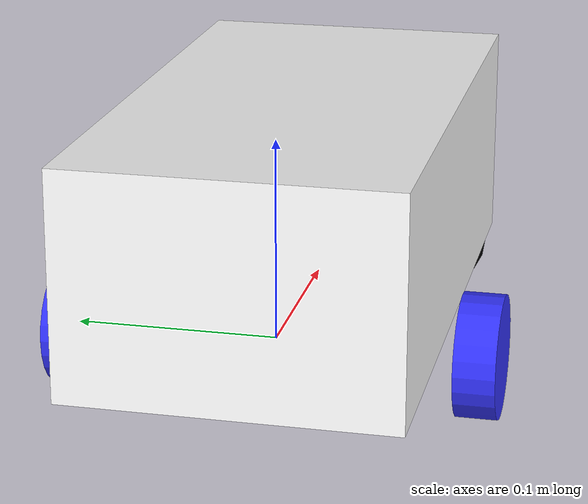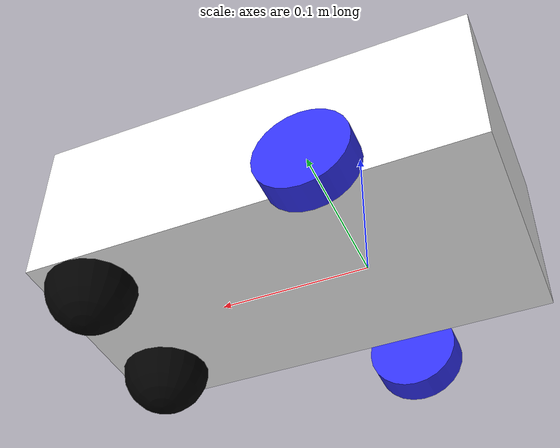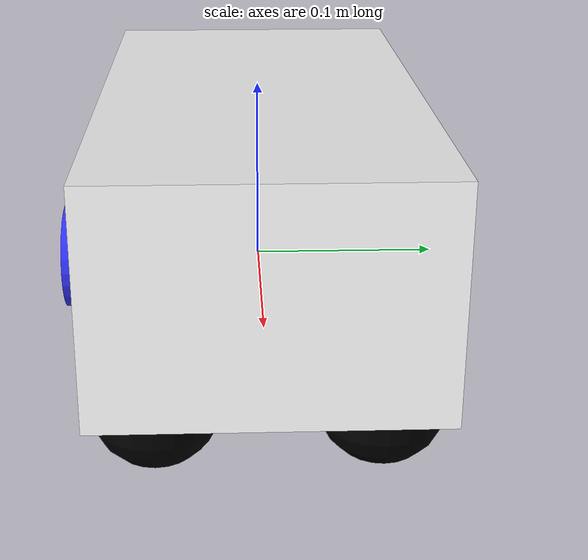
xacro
<?xml version="1.0"?>
<robot xmlns:xacro="http://www.ros.org/wiki/xacro">

    <xacro:include filename="inertial_macros.xacro"/>
    <material name="white">
        <color rgba="1 1 1 1" />
    </material>

    <material name="green">
        <color rgba="1 0.3 0.1 1" />
    </material>

    <material name="blue">
        <color rgba="0.2 0.2 1 1" />
    </material>

    <material name="black">
        <color rgba="0 0 0 1" />
    </material>

	<!-- BASE LINK -->

    <link name="base_link">

    </link>

	<!-- CLASSIS LINK -->

    <joint name="chassis_joint" type="fixed">
        <parent link="base_link"/>
        <child link="chassis"/>
        <origin xyz="-0.1 0 0"/>
    </joint>

    <link name="chassis">
            <visual>
                <origin xyz="0.15 0  0.055"/>
                <geometry>
                    <box size="0.30 0.16 0.11 "/>
                </geometry>
                <material name="white"/>
            </visual>
            <conllision>
                <origin xyz="0.15 0  0.055"/>
                <geometry>
                    <box size="0.30 0.16 0.11 "/>
                </geometry>
            </conllision>
            <xacro:inertial_box mass="0.5" x="0.30" y="0.16" z="0.11">
            	<origin xyz="0.15 0 0.055" rpy="0 0 0"/>
            </xacro:inertial_box>
        </link>

        <!-- LEFT WHEEL LINK -->

        <joint name="left_wheel_joint" type="continuous">
        	<parent link="base_link"/>
        	<child link="left_wheel"/>
        	<origin xyz="0 0.10 0" rpy="-${pi/2} 0 0"/>
        	<axis xyz="0 0 1"/>
        </joint>

        <link name="left_wheel">
        	<visual>
        		<geometry>
        			<cylinder radius="0.03" length="0.02"/>
        		</geometry>
        		<material name="blue"/>
        	</visual>
        	<conllision>
        		<geometry>
        			<cylinder radius="0.03" length="0.02"/>
        		</geometry>
        	</conllision>
        	<xacro:inertial_cylinder mass="0.1" length="0.02" radius="0.03">
        		<origin xyz="0 0 0" rpy="0 0 0"/>
        	</xacro:inertial_cylinder>
        </link>

       <!-- RIGHT WHEEL LINK -->

        <joint name="right_wheel_joint" type="continuous">
        	<parent link="base_link"/>
        	<child link="right_wheel"/>
        	<origin xyz="0 -0.10 0" rpy="-${pi/2} 0 0"/>
        	<axis xyz="0 0 -1"/>
        </joint>

        <link name="right_wheel">
        	<visual>
        		<geometry>
        			<cylinder radius="0.03" length="0.02"/>
        		</geometry>
        		<material name="blue"/>
        	</visual>
        	<conllision>
        		<geometry>
        			<cylinder radius="0.03" length="0.02"/>
        		</geometry>

        	</conllision>
        	<xacro:inertial_cylinder mass="0.1" length="0.02" radius="0.03">
        		<origin xyz="0 0 0" rpy="0 0 0"/>
        	</xacro:inertial_cylinder>
        </link>

        <!-- CASTER LEFT WHEEL LINK -->

        <joint name="Lcaster_wheel_joint" type="fixed">
        	<parent link="chassis"/>
        	<child link="Lcaster_wheel"/>
        	<origin xyz="0.27 0.05 0 "/>
        </joint>

        <link name="Lcaster_wheel">
        	<visual>
        		<geometry>
        			<sphere radius="0.03"/>
        		</geometry>
        		<material name="black"/>
        	</visual>
        	<conllision>
        		<geometry>
        			<sphere radius="0.03"/>
        		</geometry>

        	</conllision>
        	<xacro:inertial_sphere mass="0.1" radius="0.03">
        		<origin xyz="0 0 0" rpy="0 0 0"/>
        	</xacro:inertial_sphere>
        </link>

        <!-- CASTER RIGHT WHEEL LINK -->

        <joint name="Rcaster_wheel_joint" type="fixed">
        	<parent link="chassis"/>
        	<child link="Rcaster_wheel"/>
        	<origin xyz="0.27 -0.05 0 "/>
        </joint>

        <link name="Rcaster_wheel">
        	<visual>
        		<geometry>
        			<sphere radius="0.03"/>
        		</geometry>
        		<material name="black"/>
        	</visual>
        	<conllision>>
        		<geometry>
        			<sphere radius="0.03"/>
        		</geometry>

        	</conllision>>
        	<xacro:inertial_sphere mass="0.1" radius="0.03">
        		<origin xyz="0 0 0" rpy="0 0 0"/>
        	</xacro:inertial_sphere>
        </link>

</robot>
